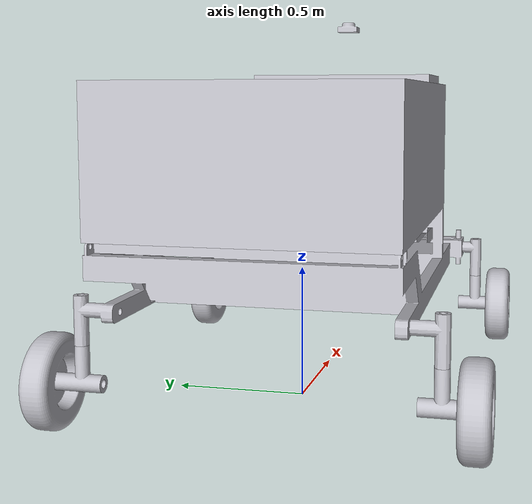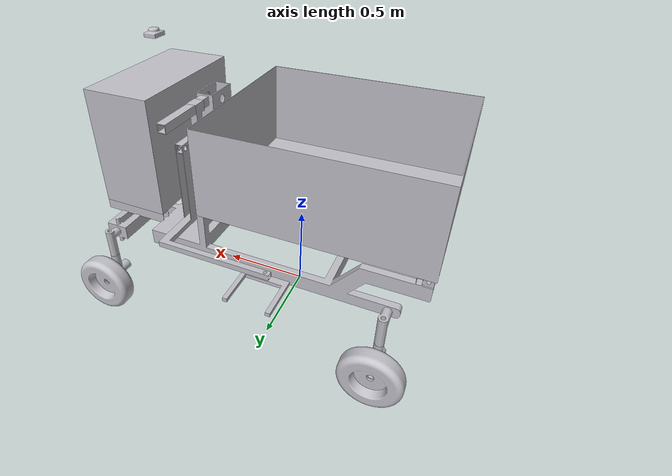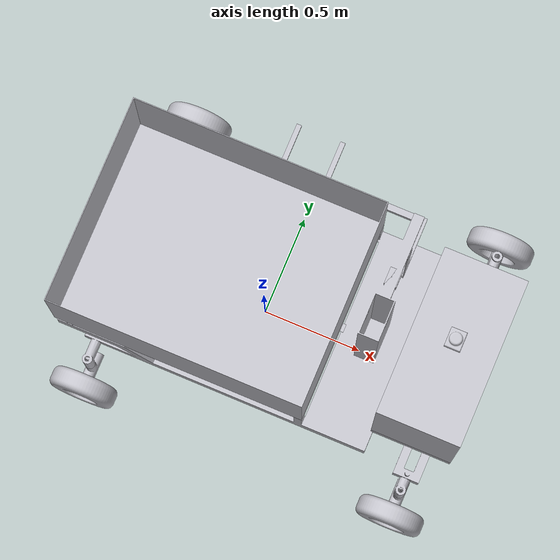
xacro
<?xml version="1.0" ?>
<robot name="test" xmlns:xacro="http://www.ros.org/wiki/xacro">

<xacro:include filename="$(find test_description)/urdf/materials.xacro" />
<xacro:include filename="$(find test_description)/urdf/test.trans" />
<xacro:include filename="$(find test_description)/urdf/test.gazebo" />
<link name="base_link">
  <inertial>
    <origin xyz="0.27907669705389315 0.004543957454179157 0.5481392725711673" rpy="0 0 0"/>
    <mass value="52.47936542791792"/>
    <inertia ixx="8.400261" iyy="19.090038" izz="24.375143" ixy="-0.0" iyz="-0.0" ixz="-0.0"/>
  </inertial>
  <visual>
    <origin xyz="0 0 0" rpy="0 0 0"/>
    <geometry>
      <mesh filename="package://test_description/meshes/base_link.stl" scale="0.001 0.001 0.001"/>
    </geometry>
    <material name="silver"/>
  </visual>
  <collision>
    <origin xyz="0 0 0" rpy="0 0 0"/>
    <geometry>
      <mesh filename="package://test_description/meshes/base_link.stl" scale="0.001 0.001 0.001"/>
    </geometry>
  </collision>
</link>

<link name="rear_left_steer_1">
  <inertial>
    <origin xyz="5.76926062478833e-10 0.008688062682560949 -0.10754836041765278" rpy="0 0 0"/>
    <mass value="1.4415913875076642"/>
    <inertia ixx="0.005135" iyy="0.002809" izz="0.003058" ixy="-0.0" iyz="0.000281" ixz="0.0"/>
  </inertial>
  <visual>
    <origin xyz="0.65 -0.6 -0.325" rpy="0 0 0"/>
    <geometry>
      <mesh filename="package://test_description/meshes/rear_left_steer_1.stl" scale="0.001 0.001 0.001"/>
    </geometry>
    <material name="silver"/>
  </visual>
  <collision>
    <origin xyz="0.65 -0.6 -0.325" rpy="0 0 0"/>
    <geometry>
      <mesh filename="package://test_description/meshes/rear_left_steer_1.stl" scale="0.001 0.001 0.001"/>
    </geometry>
  </collision>
</link>

<link name="back_left_wheel_1">
  <inertial>
    <origin xyz="-8.548717289613705e-15 0.0050000000000000044 2.7755575615628914e-17" rpy="0 0 0"/>
    <mass value="5.694847892477786"/>
    <inertia ixx="0.1" iyy="0.1" izz="0.1" ixy="0.0" iyz="0.0" ixz="0.0"/>
  </inertial>
  <visual>
    <origin xyz="0.65 -0.7 -0.195" rpy="0 0 0"/>
    <geometry>
      <mesh filename="package://test_description/meshes/back_left_wheel_1.stl" scale="0.001 0.001 0.001"/>
    </geometry>
    <material name="silver"/>
  </visual>
  <collision>
    <origin xyz="0.65 -0.7 -0.195" rpy="0 0 0"/>
    <geometry>
      <mesh filename="package://test_description/meshes/back_left_wheel_1.stl" scale="0.001 0.001 0.001"/>
    </geometry>
  </collision>
</link>

<link name="front_right_steer_v1_1">
  <inertial>
    <origin xyz="-3.963726680211721e-07 -0.008688062682560838 -0.10754836041765281" rpy="0 0 0"/>
    <mass value="1.441591387507664"/>
    <inertia ixx="0.005135" iyy="0.002809" izz="0.003058" ixy="0.0" iyz="-0.000281" ixz="0.0"/>
  </inertial>
  <visual>
    <origin xyz="-0.945027 0.6 -0.325" rpy="0 0 0"/>
    <geometry>
      <mesh filename="package://test_description/meshes/front_right_steer_v1_1.stl" scale="0.001 0.001 0.001"/>
    </geometry>
    <material name="silver"/>
  </visual>
  <collision>
    <origin xyz="-0.945027 0.6 -0.325" rpy="0 0 0"/>
    <geometry>
      <mesh filename="package://test_description/meshes/front_right_steer_v1_1.stl" scale="0.001 0.001 0.001"/>
    </geometry>
  </collision>
</link>

<link name="front_left_steer_v1_1">
  <inertial>
    <origin xyz="-3.963726680211721e-07 0.008688062682560949 -0.10754836041765278" rpy="0 0 0"/>
    <mass value="1.4415913875076642"/>
    <inertia ixx="0.005135" iyy="0.002809" izz="0.003058" ixy="-0.0" iyz="0.000281" ixz="0.0"/>
  </inertial>
  <visual>
    <origin xyz="-0.945027 -0.6 -0.325" rpy="0 0 0"/>
    <geometry>
      <mesh filename="package://test_description/meshes/front_left_steer_v1_1.stl" scale="0.001 0.001 0.001"/>
    </geometry>
    <material name="silver"/>
  </visual>
  <collision>
    <origin xyz="-0.945027 -0.6 -0.325" rpy="0 0 0"/>
    <geometry>
      <mesh filename="package://test_description/meshes/front_left_steer_v1_1.stl" scale="0.001 0.001 0.001"/>
    </geometry>
  </collision>
</link>

<link name="rear_right_steer_1">
  <inertial>
    <origin xyz="5.769259514565306e-10 -0.008688062682560838 -0.10754836041765281" rpy="0 0 0"/>
    <mass value="1.441591387507664"/>
    <inertia ixx="0.005135" iyy="0.002809" izz="0.003058" ixy="0.0" iyz="-0.000281" ixz="0.0"/>
  </inertial>
  <visual>
    <origin xyz="0.65 0.6 -0.325" rpy="0 0 0"/>
    <geometry>
      <mesh filename="package://test_description/meshes/rear_right_steer_1.stl" scale="0.001 0.001 0.001"/>
    </geometry>
    <material name="silver"/>
  </visual>
  <collision>
    <origin xyz="0.65 0.6 -0.325" rpy="0 0 0"/>
    <geometry>
      <mesh filename="package://test_description/meshes/rear_right_steer_1.stl" scale="0.001 0.001 0.001"/>
    </geometry>
  </collision>
</link>

<link name="back_right_wheel_1">
  <inertial>
    <origin xyz="-8.548717289613705e-15 -0.0050000000000000044 2.7755575615628914e-17" rpy="0 0 0"/>
    <mass value="5.694847892477786"/>
    <inertia ixx="0.1" iyy="0.1" izz="0.1" ixy="0.0" iyz="0.0" ixz="0.0"/>
  </inertial>
  <visual>
    <origin xyz="0.65 0.7 -0.195" rpy="0 0 0"/>
    <geometry>
      <mesh filename="package://test_description/meshes/back_right_wheel_1.stl" scale="0.001 0.001 0.001"/>
    </geometry>
    <material name="silver"/>
  </visual>
  <collision>
    <origin xyz="0.65 0.7 -0.195" rpy="0 0 0"/>
    <geometry>
      <mesh filename="package://test_description/meshes/back_right_wheel_1.stl" scale="0.001 0.001 0.001"/>
    </geometry>
  </collision>
</link>

<link name="front_right_wheel_1">
  <inertial>
    <origin xyz="-3.969496025213459e-07 -0.0050000000000000044 2.7755575615628914e-17" rpy="0 0 0"/>
    <mass value="5.694847892477786"/>
    <inertia ixx="0.1" iyy="0.1" izz="0.1" ixy="0.0" iyz="0.0" ixz="0.0"/>
  </inertial>
  <visual>
    <origin xyz="-0.945027 0.7 -0.195" rpy="0 0 0"/>
    <geometry>
      <mesh filename="package://test_description/meshes/front_right_wheel_1.stl" scale="0.001 0.001 0.001"/>
    </geometry>
    <material name="silver"/>
  </visual>
  <collision>
    <origin xyz="-0.945027 0.7 -0.195" rpy="0 0 0"/>
    <geometry>
      <mesh filename="package://test_description/meshes/front_right_wheel_1.stl" scale="0.001 0.001 0.001"/>
    </geometry>
  </collision>
</link>

<link name="front_left_wheel_1">
  <inertial>
    <origin xyz="-3.969496025213459e-07 0.0050000000000000044 2.7755575615628914e-17" rpy="0 0 0"/>
    <mass value="5.694847892477786"/>
    <inertia ixx="0.1" iyy="0.1" izz="0.1" ixy="0.0" iyz="0.0" ixz="0.0"/>
  </inertial>
  <visual>
    <origin xyz="-0.945027 -0.7 -0.195" rpy="0 0 0"/>
    <geometry>
      <mesh filename="package://test_description/meshes/front_left_wheel_1.stl" scale="0.001 0.001 0.001"/>
    </geometry>
    <material name="silver"/>
  </visual>
  <collision>
    <origin xyz="-0.945027 -0.7 -0.195" rpy="0 0 0"/>
    <geometry>
      <mesh filename="package://test_description/meshes/front_left_wheel_1.stl" scale="0.001 0.001 0.001"/>
    </geometry>
  </collision>
</link>

<link name="front_body_1">
  <inertial>
    <origin xyz="-7.771561172376096e-16 0.4000000000000011 0.34999999999999787" rpy="0 0 0"/>
    <mass value="4.886243839999937"/>
    <inertia ixx="0.692055" iyy="0.434591" izz="0.511172" ixy="-0.0" iyz="0.0" ixz="-0.0"/>
  </inertial>
  <visual>
    <origin xyz="-0.91 0.4 -0.55" rpy="0 0 0"/>
    <geometry>
      <mesh filename="package://test_description/meshes/front_body_1.stl" scale="0.001 0.001 0.001"/>
    </geometry>
    <material name="silver"/>
  </visual>
  <collision>
    <origin xyz="-0.91 0.4 -0.55" rpy="0 0 0"/>
    <geometry>
      <mesh filename="package://test_description/meshes/front_body_1.stl" scale="0.001 0.001 0.001"/>
    </geometry>
  </collision>
</link>

<link name="container_1">
  <inertial>
    <origin xyz="-0.6200000000000001 5.30823647993313e-15 0.1622527283170584" rpy="0 0 0"/>
    <mass value="37.30475520000019"/>
    <inertia ixx="6.309048" iyy="8.504044" izz="12.759517" ixy="0.0" iyz="0.0" ixz="0.0"/>
  </inertial>
  <visual>
    <origin xyz="-0.4 -0.0 -0.7" rpy="0 0 0"/>
    <geometry>
      <mesh filename="package://test_description/meshes/container_1.stl" scale="0.001 0.001 0.001"/>
    </geometry>
    <material name="silver"/>
  </visual>
  <collision>
    <origin xyz="-0.4 -0.0 -0.7" rpy="0 0 0"/>
    <geometry>
      <mesh filename="package://test_description/meshes/container_1.stl" scale="0.001 0.001 0.001"/>
    </geometry>
  </collision>
</link>

<link name="link2_1">
  <inertial>
    <origin xyz="-0.10694805745507163 0.10992529567155462 -0.3617168651214172" rpy="0 0 0"/>
    <mass value="4.1711800597770425"/>
    <inertia ixx="0.01" iyy="0.010" izz="0.010" ixy="0.0" iyz="0.0" ixz="-0.0"/>
  </inertial>
  <visual>
    <origin xyz="-0.57 -0.6 -1.002" rpy="0 0 0"/>
    <geometry>
      <mesh filename="package://test_description/meshes/link2_1.stl" scale="0.001 0.001 0.001"/>
    </geometry>
    <material name="silver"/>
  </visual>
  <collision>
    <origin xyz="-0.57 -0.6 -1.002" rpy="0 0 0"/>
    <geometry>
      <mesh filename="package://test_description/meshes/link2_1.stl" scale="0.001 0.001 0.001"/>
    </geometry>
  </collision>
</link>

<link name="gripper_1">
  <inertial>
    <origin xyz="-1.700029006457271e-14 0.0569430349761757 -0.010000000000000231" rpy="0 0 0"/>
    <mass value="1.0360353996706142"/>
    <inertia ixx="0.005074" iyy="0.009366" izz="0.014371" ixy="-0.0" iyz="0.0" ixz="0.0"/>
  </inertial>
  <visual>
    <origin xyz="0.051 -0.855 -0.527" rpy="0 0 0"/>
    <geometry>
      <mesh filename="package://test_description/meshes/gripper_1.stl" scale="0.001 0.001 0.001"/>
    </geometry>
    <material name="silver"/>
  </visual>
  <collision>
    <origin xyz="0.051 -0.855 -0.527" rpy="0 0 0"/>
    <geometry>
      <mesh filename="package://test_description/meshes/gripper_1.stl" scale="0.001 0.001 0.001"/>
    </geometry>
  </collision>
</link>

<link name="link1_1">
  <inertial>
    <origin xyz="-1.1102230246251565e-16 -0.022997178388872053 -0.37641985967462666" rpy="0 0 0"/>
    <mass value="2.146073295804804"/>
    <inertia ixx="0.018306" iyy="0.011609" izz="0.007961" ixy="0.0" iyz="0.00497" ixz="0.0"/>
  </inertial>
  <visual>
    <origin xyz="-0.55 -0.5 -1.441" rpy="0 0 0"/>
    <geometry>
      <mesh filename="package://test_description/meshes/link1_1.stl" scale="0.001 0.001 0.001"/>
    </geometry>
    <material name="silver"/>
  </visual>
  <collision>
    <origin xyz="-0.55 -0.5 -1.441" rpy="0 0 0"/>
    <geometry>
      <mesh filename="package://test_description/meshes/link1_1.stl" scale="0.001 0.001 0.001"/>
    </geometry>
  </collision>
</link>

<link name="lidar_1">
  <inertial>
    <origin xyz="-4.889844085198547e-11 0.0 0.017725413958288305" rpy="0 0 0"/>
    <mass value="0.596471666675333"/>
    <inertia ixx="0.000414" iyy="0.000322" izz="0.000575" ixy="-0.0" iyz="0.0" ixz="-0.0"/>
  </inertial>
  <visual>
    <origin xyz="-0.91 -0.0 -1.25" rpy="0 0 0"/>
    <geometry>
      <mesh filename="package://test_description/meshes/lidar_1.stl" scale="0.001 0.001 0.001"/>
    </geometry>
    <material name="silver"/>
  </visual>
  <collision>
    <origin xyz="-0.91 -0.0 -1.25" rpy="0 0 0"/>
    <geometry>
      <mesh filename="package://test_description/meshes/lidar_1.stl" scale="0.001 0.001 0.001"/>
    </geometry>
  </collision>
</link>

<link name="camera_1">
  <inertial>
    <origin xyz="-5.216553654319167e-09 0.012499999999999956 0.0" rpy="0 0 0"/>
    <mass value="0.10799999999999998"/>
    <inertia ixx="2e-05" iyy="2.9e-05" izz="2e-05" ixy="-0.0" iyz="0.0" ixz="-0.0"/>
  </inertial>
  <visual>
    <origin xyz="-0.014495 -0.5 -0.415" rpy="0 0 0"/>
    <geometry>
      <mesh filename="package://test_description/meshes/camera_1.stl" scale="0.001 0.001 0.001"/>
    </geometry>
    <material name="silver"/>
  </visual>
  <collision>
    <origin xyz="-0.014495 -0.5 -0.415" rpy="0 0 0"/>
    <geometry>
      <mesh filename="package://test_description/meshes/camera_1.stl" scale="0.001 0.001 0.001"/>
    </geometry>
  </collision>
</link>

<link name="imu_1">
  <inertial>
    <origin xyz="1.0142331718920872e-07 0.0 0.0014999999999999458" rpy="0 0 0"/>
    <mass value="0.0064800000000000005"/>
    <inertia ixx="1e-06" iyy="0.0" izz="1e-06" ixy="-0.0" iyz="0.0" ixz="-0.0"/>
  </inertial>
  <visual>
    <origin xyz="-0.40203 -0.0 -0.505" rpy="0 0 0"/>
    <geometry>
      <mesh filename="package://test_description/meshes/imu_1.stl" scale="0.001 0.001 0.001"/>
    </geometry>
    <material name="silver"/>
  </visual>
  <collision>
    <origin xyz="-0.40203 -0.0 -0.505" rpy="0 0 0"/>
    <geometry>
      <mesh filename="package://test_description/meshes/imu_1.stl" scale="0.001 0.001 0.001"/>
    </geometry>
  </collision>
</link>

<joint name="rear_left_steering_joint" type="revolute">
  <origin xyz="-0.65 0.6 0.325" rpy="0 0 0"/>
  <parent link="base_link"/>
  <child link="rear_left_steer_1"/>
  <axis xyz="0.0 0.0 1.0"/>
  <limit effort="100" lower="-1.56" upper="1.56" velocity="10"/>
</joint>

<joint name="rear_left_wheel_joint" type="continuous">
  <origin xyz="0.0 0.1 -0.13" rpy="0 0 0"/>
  <parent link="rear_left_steer_1"/>
  <child link="back_left_wheel_1"/>
  <axis xyz="0.0 1.0 0.0"/>
</joint>

<joint name="front_right_steering_joint" type="revolute">
  <origin xyz="0.945027 -0.6 0.325" rpy="0 0 0"/>
  <parent link="base_link"/>
  <child link="front_right_steer_v1_1"/>
  <axis xyz="0.0 0.0 1.0"/>
  <limit effort="100" lower="-1.56" upper="1.56" velocity="10"/>
</joint>

<joint name="front_left_steering_joint" type="revolute">
  <origin xyz="0.945027 0.6 0.325" rpy="0 0 0"/>
  <parent link="base_link"/>
  <child link="front_left_steer_v1_1"/>
  <axis xyz="0.0 0.0 1.0"/>
  <limit effort="100" lower="-1.56" upper="1.56" velocity="10"/>
</joint>

<joint name="rear_right_steering_joint" type="revolute">
  <origin xyz="-0.65 -0.6 0.325" rpy="0 0 0"/>
  <parent link="base_link"/>
  <child link="rear_right_steer_1"/>
  <axis xyz="0.0 0.0 1.0"/>
  <limit effort="100" lower="-1.56" upper="1.56" velocity="10"/>
</joint>

<joint name="rear_right_wheel_joint" type="continuous">
  <origin xyz="0.0 -0.1 -0.13" rpy="0 0 0"/>
  <parent link="rear_right_steer_1"/>
  <child link="back_right_wheel_1"/>
  <axis xyz="0.0 1.0 0.0"/>
</joint>

<joint name="front_right_wheel_joint" type="continuous">
  <origin xyz="0.0 -0.1 -0.13" rpy="0 0 0"/>
  <parent link="front_right_steer_v1_1"/>
  <child link="front_right_wheel_1"/>
  <axis xyz="0.0 1.0 0.0"/>
</joint>

<joint name="front_left_wheel_joint" type="continuous">
  <origin xyz="0.0 0.1 -0.13" rpy="0 0 0"/>
  <parent link="front_left_steer_v1_1"/>
  <child link="front_left_wheel_1"/>
  <axis xyz="0.0 1.0 0.0"/>
</joint>

<joint name="Rigid15" type="fixed">
  <origin xyz="0.91 -0.4 0.55" rpy="0 0 0"/>
  <parent link="base_link"/>
  <child link="front_body_1"/>
</joint>

<joint name="Rigid16" type="fixed">
  <origin xyz="0.4 0.0 0.7" rpy="0 0 0"/>
  <parent link="base_link"/>
  <child link="container_1"/>
</joint>

<joint name="arm_joint" type="continuous">
  <origin xyz="0.02 0.1 -0.439" rpy="0 0 0"/>
  <parent link="link1_1"/>
  <child link="link2_1"/>
  <axis xyz="1.0 0.0 0.0"/>
</joint>

<joint name="gripper_joint" type="continuous">
  <origin xyz="-0.621 0.255 -0.475" rpy="0 0 0"/>
  <parent link="link2_1"/>
  <child link="gripper_1"/>
  <axis xyz="0.0 0.0 -1.0"/>
</joint>

<joint name="slider" type="prismatic">
  <origin xyz="0.55 0.5 1.441" rpy="0 0 0"/>
  <parent link="base_link"/>
  <child link="link1_1"/>
  <axis xyz="0.0 1.0 0.0"/>
  <limit upper="-0.1" lower="-0.39" effort="100" velocity="100"/>
</joint>

<joint name="Rigid21" type="fixed">
  <origin xyz="0.0 0.4 0.9" rpy="0 0 0"/>
  <parent link="front_body_1"/>
  <child link="lidar_1"/>
</joint>

<joint name="Rigid22" type="fixed">
  <origin xyz="0.014495 0.5 0.415" rpy="0 0 0"/>
  <parent link="base_link"/>
  <child link="camera_1"/>
</joint>

<joint name="Rigid23" type="fixed">
  <origin xyz="0.40203 0.0 0.505" rpy="0 0 0"/>
  <parent link="base_link"/>
  <child link="imu_1"/>
</joint>

</robot>

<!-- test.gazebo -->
<robot name="test" xmlns:xacro="http://www.ros.org/wiki/xacro" >

<xacro:property name="body_color" value="Gazebo/Silver" />

<gazebo>
  <plugin name="control" filename="libgazebo_ros_control.so"/>
  <robotNamespace>test</robotNamespace>
</gazebo>

<!-- hokuyo -->
  <gazebo reference="lidar_1">
    <sensor type="ray" name="RP_lidar">
      <pose>0 0 0 0 0 0</pose>
      <visualize>false</visualize>
      <update_rate>40</update_rate>
      <ray>
        <scan>
          <horizontal>
            <samples>10000</samples>
            <resolution>1</resolution>
            <min_angle>-3.14</min_angle>
            <max_angle>3.14</max_angle>
          </horizontal>
        </scan>
        <range>
          <min>0.10</min>
          <max>12.0</max>
          <resolution>0.01</resolution>
        </range>
        <noise>
          <type>gaussian</type>
          <mean>0.0</mean>
          <stddev>0.01</stddev>
        </noise>
      </ray>
      <plugin name="gazebo_ros_head_hokuyo_controller" filename="libgazebo_ros_laser.so">
        <topicName>/scan</topicName>
        <frameName>lidar_1</frameName>

      </plugin>
    </sensor>
  </gazebo>
<gazebo reference="imu_1">
    <gravity>true</gravity>
    <sensor name="imu_sensor" type="imu">
      <always_on>true</always_on>
      <update_rate>100</update_rate>
      <visualize>true</visualize>
      <topic>__default_topic__</topic>
      <plugin filename="libgazebo_ros_imu_sensor.so" name="imu_plugin">
        <topicName>imu/data</topicName>
        <bodyName>imu_link</bodyName>
        <updateRateHZ>10.0</updateRateHZ>
        <gaussianNoise>0.0</gaussianNoise>
        <xyzOffset>0 0 0</xyzOffset>
        <rpyOffset>0 0 0</rpyOffset>
        <frameName>imu_1</frameName>
        <initialOrientationAsReference>false</initialOrientationAsReference>
      </plugin>
      <pose>0 0 0 0 0 0</pose>
    </sensor>
  </gazebo>

<gazebo>
  <plugin name="gps_controller" filename="libhector_gazebo_ros_gps.so">
    <updateRate>40</updateRate>
    <frameId>gps</frameId>
    <alwayson>true</alwayson>
    <updaterate>1.0</updaterate>
    <bodyname>base_link</bodyname>
    <topicName>navsat/fix</topicName>
     <referenceLatitude>49.9</referenceLatitude>
     <referenceLongitude>8.9</referenceLongitude>
    <velocitytopicname>navsat/vel</velocitytopicname>
    <drift>5.0 5.0 5.0</drift>
    <gaussiannoise>0.1 0.1 0.1</gaussiannoise>
    <velocitydrift>0 0 0</velocitydrift>
    <velocitygaussiannoise>0.1 0.1 0.1</velocitygaussiannoise>
</plugin>
</gazebo>

<gazebo reference="base_link">
  <material>${body_color}</material>
  <mu1>0.2</mu1>
  <mu2>0.2</mu2>
  <selfCollide>true</selfCollide>
  <gravity>true</gravity>
</gazebo>

<gazebo reference="rear_left_steer_1">
  <material>${body_color}</material>
  <mu1>0.2</mu1>
  <mu2>0.2</mu2>
  <selfCollide>true</selfCollide>
</gazebo>

<gazebo reference="back_left_wheel_1">
  <material>${body_color}</material>
  <mu1>50</mu1>
  <mu2>50</mu2>
  <selfCollide>true</selfCollide>
</gazebo>

<gazebo reference="front_right_steer_v1_1">
  <material>${body_color}</material>
  <mu1>0.2</mu1>
  <mu2>0.2</mu2>
  <selfCollide>true</selfCollide>
</gazebo>

<gazebo reference="front_left_steer_v1_1">
  <material>${body_color}</material>
  <mu1>0.2</mu1>
  <mu2>0.2</mu2>
  <selfCollide>true</selfCollide>
</gazebo>

<gazebo reference="rear_right_steer_1">
  <material>${body_color}</material>
  <mu1>0.2</mu1>
  <mu2>0.2</mu2>
  <selfCollide>true</selfCollide>
</gazebo>

<gazebo reference="back_right_wheel_1">
  <material>${body_color}</material>
  <mu1>50</mu1>
  <mu2>50</mu2>
  <selfCollide>true</selfCollide>
</gazebo>

<gazebo reference="front_right_wheel_1">
  <material>${body_color}</material>
  <mu1>50</mu1>
  <mu2>50</mu2>
  <selfCollide>true</selfCollide>
</gazebo>

<gazebo reference="front_left_wheel_1">
  <material>${body_color}</material>
  <mu1>50</mu1>
  <mu2>50</mu2>
  <selfCollide>true</selfCollide>
</gazebo>

<gazebo reference="front_body_1">
  <material>${body_color}</material>
  <mu1>0.2</mu1>
  <mu2>0.2</mu2>
  <selfCollide>true</selfCollide>
</gazebo>

<gazebo reference="container_1">
  <material>${body_color}</material>
  <mu1>0.2</mu1>
  <mu2>0.2</mu2>
  <selfCollide>true</selfCollide>
</gazebo>

<gazebo reference="link2_1">
  <material>${body_color}</material>
  <mu1>0.2</mu1>
  <mu2>0.2</mu2>
  <selfCollide>true</selfCollide>
</gazebo>

<gazebo reference="gripper_1">
  <material>${body_color}</material>
  <mu1>0.2</mu1>
  <mu2>0.2</mu2>
  <selfCollide>true</selfCollide>
</gazebo>

<gazebo reference="link1_1">
  <material>${body_color}</material>
  <mu1>0.2</mu1>
  <mu2>0.2</mu2>
  <selfCollide>true</selfCollide>
</gazebo>

<gazebo reference="lidar_1">
  <material>${body_color}</material>
  <mu1>0.2</mu1>
  <mu2>0.2</mu2>
  <selfCollide>true</selfCollide>
</gazebo>

<gazebo reference="camera_1">
  <material>${body_color}</material>
  <mu1>0.2</mu1>
  <mu2>0.2</mu2>
  <selfCollide>true</selfCollide>
</gazebo>

<gazebo reference="imu_1">
  <material>${body_color}</material>
  <mu1>0.2</mu1>
  <mu2>0.2</mu2>
  <selfCollide>true</selfCollide>
</gazebo>

</robot>
